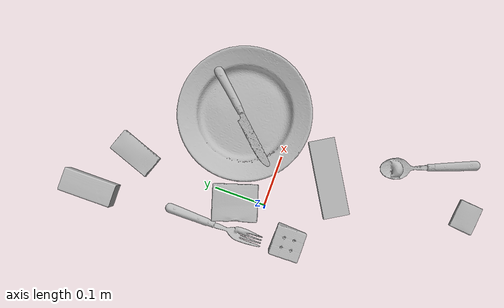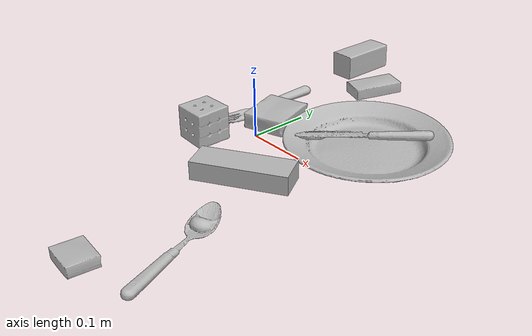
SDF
<sdf version="1.4">
  <world name="default">
    <light name="light1" type="point">
      <pose>0 0 1 0 0 0</pose>
      <diffuse>3 3 3 1</diffuse>
      <specular>3 3 3 1</specular>
    </light>
    <light name="light2" type="point">
      <pose>0 0.5 2 0 0 0</pose>
      <diffuse>1 1 1 1</diffuse>
      <specular>1 1 1 1</specular>
    </light>
    <light name="light3" type="point">
      <pose>0 0.5 2 0 0 0</pose>
      <diffuse>3 3 3 1</diffuse>
      <specular>3 3 3 1</specular>
    </light>
    <scene>
      <ambient>0.7 0.7 0.7</ambient>
    </scene>
    <model name="box11">
      <link name="link_box11">
        <collision name="default">
          <geometry>
            <mesh>
              <uri>model://jenga/collision_meshes/collision.obj</uri>
              <scale>1.0 1.0 1.0</scale>
            </mesh>
          </geometry>
          <surface>
            <friction>
              <ode>
                <mu>0.5</mu>
                <mu2>0.5</mu2>
              </ode>
            </friction>
          <contact>
        <ode>
            <max_vel>0</max_vel>
            <min_depth>0.0001</min_depth>
            <kp>1e8</kp>
        </ode>
    </contact></surface>
        </collision>
        <visual name="default">
          <geometry>
            <mesh>
              <uri>model://jenga/visual_meshes/visual.dae</uri>
              <scale>1.0 1.0 1.0</scale>
            </mesh>
          </geometry>
        </visual>
        <inertial>
          <mass>0.24099597334861755</mass>
          <pose>-2.502855807051674e-07 -0.00010250010382151231 -4.0923401684267446e-05 0.0 -7.34215461761844e-07 0.0</pose>
          <inertia>
            <ixx>6.668944e-05</ixx>
            <iyy>0.0004518858</iyy>
            <izz>0.00048242652</izz>
            <ixy>0</ixy>
            <ixz>0</ixz>
            <iyz>0</iyz>
          </inertia>
        </inertial>
      </link>
      <pose>0.09163054078817368 -0.09816863387823105 0.01499999687075615 1.8403114666625702e-09 -1.5832162386811832e-09 -2.6071505415412273</pose>
    </model>
    <model name="box12">
      <link name="link_box12">
        <collision name="default">
          <geometry>
            <mesh>
              <uri>model://wood_block/collision_meshes/collision.obj</uri>
              <scale>0.5 0.5 0.5</scale>
            </mesh>
          </geometry>
          <surface>
            <friction>
              <ode>
                <mu>0.5</mu>
                <mu2>0.5</mu2>
              </ode>
            </friction>
          <contact>
        <ode>
            <max_vel>0</max_vel>
            <min_depth>0.0001</min_depth>
            <kp>1e8</kp>
        </ode>
    </contact></surface>
        </collision>
        <visual name="default">
          <geometry>
            <mesh>
              <uri>model://wood_block/visual_meshes/visual.dae</uri>
              <scale>0.5 0.5 0.5</scale>
            </mesh>
          </geometry>
        </visual>
        <inertial>
          <mass>0.14152581989765167</mass>
          <pose>-2.9066577553749084e-06 -0.000285404734313488 0.00013204291462898254 -0.05220812938960465 -0.005192695343712196 -0.006861377662393293</pose>
          <inertia>
            <ixx>4.7345737e-05</ixx>
            <iyy>0.0001495652</iyy>
            <izz>0.00014900575</izz>
            <ixy>0</ixy>
            <ixz>0</ixz>
            <iyz>0</iyz>
          </inertia>
        </inertial>
      </link>
      <pose>-0.07790034264326096 0.32726046442985535 0.02262927033007145 -0.00520857893707685 0.0057187261209475405 1.5739720094812424</pose>
    </model>
    <model name="box13">
      <link name="link_box13">
        <collision name="default">
          <geometry>
            <mesh>
              <uri>model://sugar_box/collision_meshes/collision.obj</uri>
              <scale>0.5 0.5 0.5</scale>
            </mesh>
          </geometry>
          <surface>
            <friction>
              <ode>
                <mu>0.5</mu>
                <mu2>0.5</mu2>
              </ode>
            </friction>
          <contact>
        <ode>
            <max_vel>0</max_vel>
            <min_depth>0.0001</min_depth>
            <kp>1e8</kp>
        </ode>
    </contact></surface>
        </collision>
        <visual name="default">
          <geometry>
            <mesh>
              <uri>model://sugar_box/visual_meshes/visual.dae</uri>
              <scale>0.5 0.5 0.5</scale>
            </mesh>
          </geometry>
        </visual>
        <inertial>
          <mass>0.08336380124092102</mass>
          <pose>0.0005171863595023751 1.924554817378521e-05 -0.00018182402709499002 -0.0004046263001201691 0.0010506636386254094 0.0026153790217303746</pose>
          <inertia>
            <ixx>1.7364619e-05</ixx>
            <iyy>5.612603e-05</iyy>
            <izz>6.718955e-05</izz>
            <ixy>0</ixy>
            <ixz>0</ixz>
            <iyz>0</iyz>
          </inertia>
        </inertial>
      </link>
      <pose>0.01174081303179264 0.267694354057312 0.011399304494261742 0.0007755652309298684 -0.02343266552214658 1.2161740709613296</pose>
    </model>
    <model name="box21">
      <link name="link_box21">
        <collision name="default">
          <geometry>
            <mesh>
              <uri>model://pudding_box/collision_meshes/collision.obj</uri>
              <scale>0.5 0.5 0.5</scale>
            </mesh>
          </geometry>
          <surface>
            <friction>
              <ode>
                <mu>0.5</mu>
                <mu2>0.5</mu2>
              </ode>
            </friction>
          <contact>
        <ode>
            <max_vel>0</max_vel>
            <min_depth>0.0001</min_depth>
            <kp>1e8</kp>
        </ode>
    </contact></surface>
        </collision>
        <visual name="default">
          <geometry>
            <mesh>
              <uri>model://pudding_box/visual_meshes/visual.dae</uri>
              <scale>0.5 0.5 0.5</scale>
            </mesh>
          </geometry>
        </visual>
        <inertial>
          <mass>0.025778822600841522</mass>
          <pose>0.00024474109522998333 0.00040339428232982755 -0.0002594413817860186 0.005213100851918505 -0.006603799640504885 0.02007982516037135</pose>
          <inertia>
            <ixx>7.285408e-06</ixx>
            <iyy>4.901674e-06</iyy>
            <izz>1.07588085e-05</izz>
            <ixy>0</ixy>
            <ixz>0</ixz>
            <iyz>0</iyz>
          </inertia>
        </inertial>
      </link>
      <pose>0.10898321121931076 -0.37185239791870117 0.009862903505563736 0.022348538330022028 -0.011391682127697419 -1.667791678776635</pose>
    </model>
    <model name="box22">
      <link name="link_box22">
        <collision name="default">
          <geometry>
            <mesh>
              <uri>model://rubiks_cube/collision_meshes/collision.obj</uri>
              <scale>1.0 1.0 1.0</scale>
            </mesh>
          </geometry>
          <surface>
            <friction>
              <ode>
                <mu>0.5</mu>
                <mu2>0.5</mu2>
              </ode>
            </friction>
          <contact>
        <ode>
            <max_vel>0</max_vel>
            <min_depth>0.0001</min_depth>
            <kp>1e8</kp>
        </ode>
    </contact></surface>
        </collision>
        <visual name="default">
          <geometry>
            <mesh>
              <uri>model://rubiks_cube/visual_meshes/visual.dae</uri>
              <scale>1.0 1.0 1.0</scale>
            </mesh>
          </geometry>
        </visual>
        <inertial>
          <mass>0.22147096693515778</mass>
          <pose>2.6721041649580002e-05 5.256967051536776e-05 -7.264316082000732e-06 -0.05467273282600652 -0.09814100107642566 -0.034457018786431724</pose>
          <inertia>
            <ixx>0.00012237758</ixx>
            <iyy>0.00012180688</iyy>
            <izz>0.00012339167</izz>
            <ixy>0</ixy>
            <ixz>0</ixz>
            <iyz>0</iyz>
          </inertia>
        </inertial>
      </link>
      <pose>-0.05029021576046944 -0.06418577581644058 0.028678996488451958 -1.6399785698002342e-06 4.861122427577103e-07 1.5667588199112725</pose>
    </model>
    <model name="box23">
      <link name="link_box23">
        <collision name="default">
          <geometry>
            <mesh>
              <uri>model://gelatin_box/collision_meshes/collision.obj</uri>
              <scale>1.0 1.0 1.0</scale>
            </mesh>
          </geometry>
          <surface>
            <friction>
              <ode>
                <mu>0.5</mu>
                <mu2>0.5</mu2>
              </ode>
            </friction>
          <contact>
        <ode>
            <max_vel>0</max_vel>
            <min_depth>0.0001</min_depth>
            <kp>1e8</kp>
        </ode>
    </contact></surface>
        </collision>
        <visual name="default">
          <geometry>
            <mesh>
              <uri>model://gelatin_box/visual_meshes/visual.dae</uri>
              <scale>1.0 1.0 1.0</scale>
            </mesh>
          </geometry>
        </visual>
        <inertial>
          <mass>0.20053431391716003</mass>
          <pose>0.0004319618456065655 0.00011156871914863586 -0.00036403207923285663 -0.001050372330881514 -0.004755818219920532 0.016440563197859918</pose>
          <inertia>
            <ixx>0.00014156084</ixx>
            <iyy>0.00010111618</iyy>
            <izz>0.00021548718</izz>
            <ixy>0</ixy>
            <ixz>0</ixz>
            <iyz>0</iyz>
          </inertia>
        </inertial>
      </link>
      <pose>-0.013214681297540665 0.05549154430627823 0.015168312937021255 0.005597409074357872 -0.007304458529802795 -2.8422936728695745</pose>
    </model>
    <model name="plate1">
      <link name="link_plate1">
        <collision name="default">
          <geometry>
            <mesh>
              <uri>model://plate/collision_meshes/collision.obj</uri>
              <scale>1.0 1.0 1.0</scale>
            </mesh>
          </geometry>
          <surface>
            <friction>
              <ode>
                <mu>0.5</mu>
                <mu2>0.5</mu2>
              </ode>
            </friction>
          <contact>
        <ode>
            <max_vel>0</max_vel>
            <min_depth>0.0001</min_depth>
            <kp>1e8</kp>
        </ode>
    </contact></surface>
        </collision>
        <visual name="default">
          <geometry>
            <mesh>
              <uri>model://plate/visual_meshes/visual.dae</uri>
              <scale>1.0 1.0 1.0</scale>
            </mesh>
          </geometry>
        </visual>
        <inertial>
          <mass>0.1705944687128067</mass>
          <pose>-0.0006044638575986028 0.0002782570372801274 -0.0010561983799561858 0.002218806973518856 -0.003225464946202784 0.4526031622217862</pose>
          <inertia>
            <ixx>0.0007980444</ixx>
            <iyy>0.0007904114</iyy>
            <izz>0.0015608557</izz>
            <ixy>0</ixy>
            <ixz>0</ixz>
            <iyz>0</iyz>
          </inertia>
        </inertial>
      </link>
      <pose>0.1540990173816681 0.09446641802787781 0.01373300515115261 7.22593071294334e-08 1.9965086623384505e-07 1.9134148966114541</pose>
    </model>
    <model name="silverware1">
      <link name="link_silverware1">
        <collision name="default">
          <geometry>
            <mesh>
              <uri>model://fork/collision_meshes/collision.obj</uri>
              <scale>1.0 1.0 1.0</scale>
            </mesh>
          </geometry>
          <surface>
            <friction>
              <ode>
                <mu>0.5</mu>
                <mu2>0.5</mu2>
              </ode>
            </friction>
          <contact>
        <ode>
            <max_vel>0</max_vel>
            <min_depth>0.0001</min_depth>
            <kp>1e8</kp>
        </ode>
    </contact></surface>
        </collision>
        <visual name="default">
          <geometry>
            <mesh>
              <uri>model://fork/visual_meshes/visual.dae</uri>
              <scale>1.0 1.0 1.0</scale>
            </mesh>
          </geometry>
        </visual>
        <inertial>
          <mass>0.02693658135831356</mass>
          <pose>-0.02957003191113472 0.00046588244731538 0.0003218860365450382 -0.013551533598057301 -0.010977833518912038 0.014453896181446386</pose>
          <inertia>
            <ixx>9.442797e-07</ixx>
            <iyy>7.032368e-05</iyy>
            <izz>7.074603e-05</izz>
            <ixy>0</ixy>
            <ixz>0</ixz>
            <iyz>0</iyz>
          </inertia>
        </inertial>
      </link>
      <pose>-0.06746531277894974 0.08068540692329407 0.005699381232261658 -0.17936681102360047 0.025198689583605903 -1.5969105256920575</pose>
    </model>
    <model name="silverware2">
      <link name="link_silverware2">
        <collision name="default">
          <geometry>
            <mesh>
              <uri>model://knife/collision_meshes/collision.obj</uri>
              <scale>1.0 1.0 1.0</scale>
            </mesh>
          </geometry>
          <surface>
            <friction>
              <ode>
                <mu>0.5</mu>
                <mu2>0.5</mu2>
              </ode>
            </friction>
          <contact>
        <ode>
            <max_vel>0</max_vel>
            <min_depth>0.0001</min_depth>
            <kp>1e8</kp>
        </ode>
    </contact></surface>
        </collision>
        <visual name="default">
          <geometry>
            <mesh>
              <uri>model://knife/visual_meshes/visual.dae</uri>
              <scale>1.0 1.0 1.0</scale>
            </mesh>
          </geometry>
        </visual>
        <inertial>
          <mass>0.029087698087096214</mass>
          <pose>-0.023785242810845375 0.0015275123296305537 5.0620237743714824e-05 0.07305335090844457 0.017248415402536993 -0.007409830271159857</pose>
          <inertia>
            <ixx>8.256269e-07</ixx>
            <iyy>0.00011175022</iyy>
            <izz>0.00011201614</izz>
            <ixy>0</ixy>
            <ixz>0</ixz>
            <iyz>0</iyz>
          </inertia>
        </inertial>
      </link>
      <pose>0.14564281702041626 0.09770306944847107 0.024317659437656403 -0.0019431479213038545 -0.00010808099222322572 -2.328684244881816</pose>
    </model>
    <model name="silverware3">
      <link name="link_silverware3">
        <collision name="default">
          <geometry>
            <mesh>
              <uri>model://spoon/collision_meshes/collision.obj</uri>
              <scale>1.0 1.0 1.0</scale>
            </mesh>
          </geometry>
          <surface>
            <friction>
              <ode>
                <mu>0.5</mu>
                <mu2>0.5</mu2>
              </ode>
            </friction>
          <contact>
        <ode>
            <max_vel>0</max_vel>
            <min_depth>0.0001</min_depth>
            <kp>1e8</kp>
        </ode>
    </contact></surface>
        </collision>
        <visual name="default">
          <geometry>
            <mesh>
              <uri>model://spoon/visual_meshes/visual.dae</uri>
              <scale>1.0 1.0 1.0</scale>
            </mesh>
          </geometry>
        </visual>
        <inertial>
          <mass>0.04163059964776039</mass>
          <pose>-0.005526324268430471 -0.001603418029844761 -0.0007271656068041921 0.035215733596471024 -0.03906582179646946 0.006150610371924991</pose>
          <inertia>
            <ixx>2.3155617e-06</ixx>
            <iyy>0.00015840305</iyy>
            <izz>0.00015954502</izz>
            <ixy>0</ixy>
            <ixz>0</ixz>
            <iyz>0</iyz>
          </inertia>
        </inertial>
      </link>
      <pose>0.17397604882717133 -0.2750447690486908 0.008385264314711094 0.006731864771026558 0.026892964215700324 1.9467223260916247</pose>
    </model>
  <physics type="ode">
      <max_contacts>50</max_contacts>
      <ode>
        <solver>
          <type>quick</type>
          <iters>75</iters>
        </solver>
        <constraints>
          <contact_max_correcting_vel>0</contact_max_correcting_vel>
          <contact_surface_layer>0</contact_surface_layer>
        </constraints>
      </ode>
    </physics></world>
</sdf>
